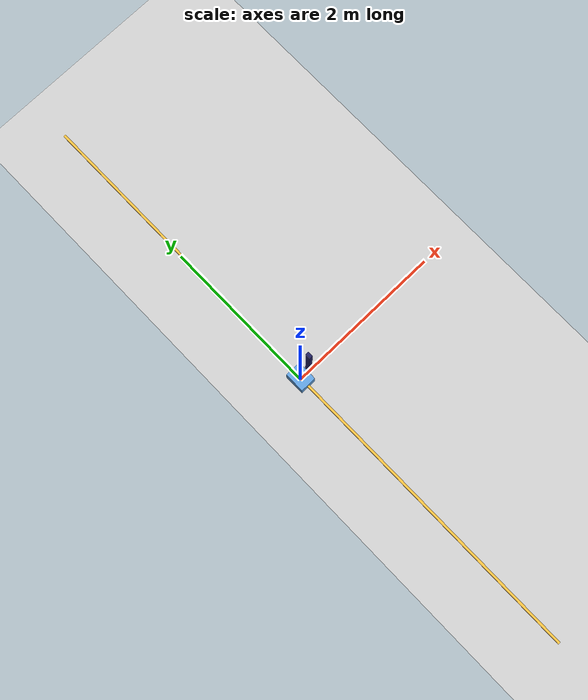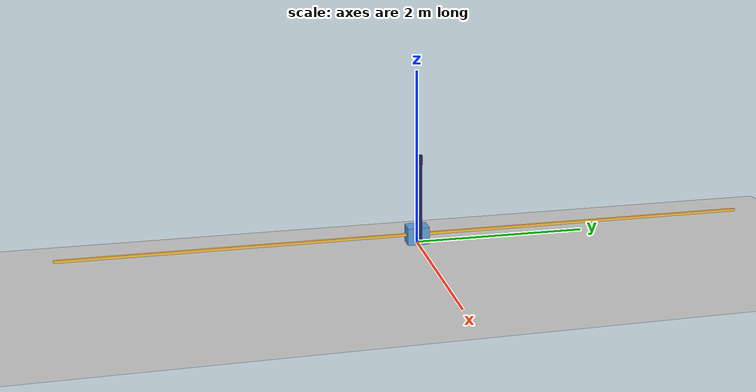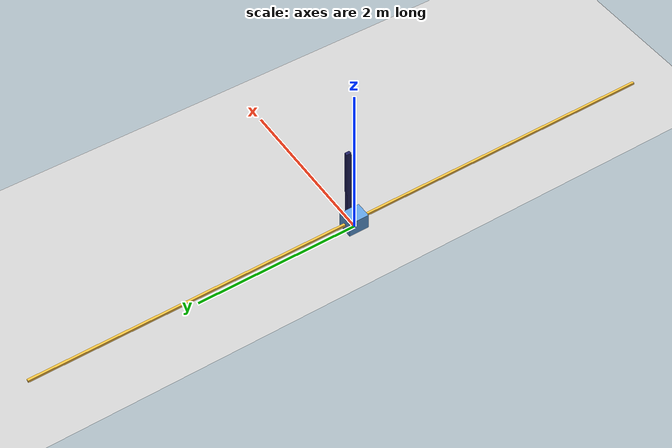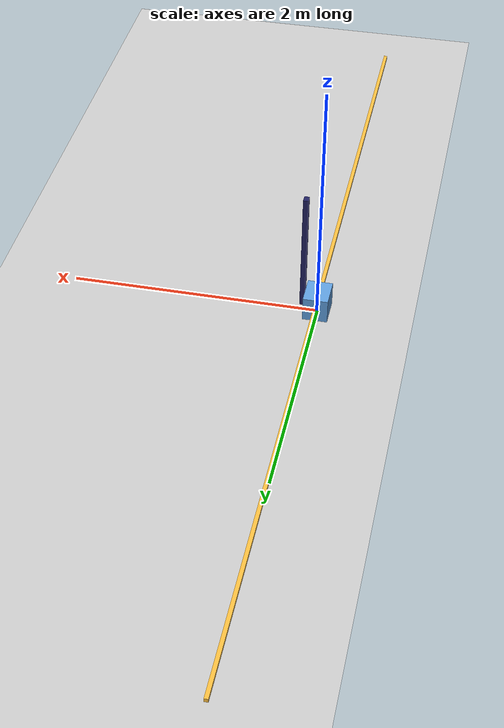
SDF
<?xml version="1.0" ?>
<sdf version="1.8">
  <world name="cartpole">
    <physics name="10ms" type="ignored">
      <max_step_size>0.01</max_step_size>
      <real_time_update_rate>0</real_time_update_rate>
    </physics>
    <plugin
      filename="gz-sim-physics-system"
      name="gz::sim::systems::Physics">
    </plugin>
    <plugin
      filename="gz-sim-contact-system"
      name="gz::sim::systems::Contact">
    </plugin>
    <plugin
      filename="gz-sim-sensors-system"
      name="gz::sim::systems::Sensors">
      <render_engine>ogre2</render_engine>
    </plugin>
    <plugin
      filename="gz-sim-scene-broadcaster-system"
      name="gz::sim::systems::SceneBroadcaster">
    </plugin>
    <plugin
      filename="gz-sim-user-commands-system"
      name="gz::sim::systems::UserCommands">
    </plugin>
    <plugin
      filename="gz-sim-python-system-loader-system"
      name="gz::sim::systems::PythonSystemLoader">
        <module_name>cartpole_learner</module_name>
        <agent_name>cartpole</agent_name>
        <max_steps_per_episode>500</max_steps_per_episode>
        <max_training_episodes>1000</max_training_episodes>
    </plugin>

    <light name="sun" type="directional">
      <cast_shadows>true</cast_shadows>
      <pose>0 0 10 0 0 0</pose>
      <diffuse>0.8 0.8 0.8 1</diffuse>
      <specular>0.2 0.2 0.2 1</specular>
      <attenuation>
        <range>1000</range>
        <constant>0.9</constant>
        <linear>0.01</linear>
        <quadratic>0.001</quadratic>
      </attenuation>
      <direction>-0.5 0.1 -0.9</direction>
    </light>

    <model name="ground_plane">
      <static>true</static>
      <link name="link">
        <collision name="collision">
          <geometry>
            <plane>
              <normal>0 0 1</normal>
              <size>100 100</size>
            </plane>
          </geometry>
        </collision>
        <visual name="visual">
          <geometry>
            <plane>
              <normal>0 0 1</normal>
              <size>100 100</size>
            </plane>
          </geometry>
          <material>
            <ambient>0.8 0.8 0.8 1</ambient>
            <diffuse>0.8 0.8 0.8 1</diffuse>
            <specular>0.8 0.8 0.8 1</specular>
          </material>
        </visual>
      </link>
    </model>

    <model name="cartpole">
      <self_collide>true</self_collide>
      <pose>0 0 0.10 0 0 0</pose>
      <include merge="true">
        <uri>package://gazebo_gymnasium_resources/models/cartpole</uri>
      </include>
      <!-- Anchor the slider rail to the world frame. Defined here in
           the world SDF rather than inside cartpole.sdf — see the
           comment in models/cartpole/cartpole.sdf for the reason. -->
      <joint name="world_to_slider" type="fixed">
        <parent>world</parent>
        <child>slider</child>
      </joint>
    </model>
  </world>
</sdf>

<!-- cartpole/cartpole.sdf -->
<sdf version='1.11'>
  <model name='cartpole'>
    <link name='slider'>
      <inertial>
        <pose>0 0 0 0 0 0</pose>
        <mass>1</mass>
        <inertia>
          <ixx>0.0085400000000000007</ixx>
          <ixy>0</ixy>
          <ixz>0</ixz>
          <iyy>0.0066699999999999997</iyy>
          <iyz>0</iyz>
          <izz>0.0085400000000000007</izz>
        </inertia>
      </inertial>
      <collision name='slider_collision'>
        <pose>0 0 0 0 0 0</pose>
        <geometry>
          <box>
            <size>0.029999999999999999 8 0.029999999999999999</size>
          </box>
        </geometry>
      </collision>
      <visual name='slider_visual'>
        <pose>0 0 0 0 0 0</pose>
        <geometry>
          <box>
            <size>0.029999999999999999 8 0.029999999999999999</size>
          </box>
        </geometry>
        <material>
          <diffuse>1 0.75000006 0.25 1</diffuse>
          <ambient>1 0.75000006 0.25 1</ambient>
        </material>
      </visual>
    </link>
    <joint name='slider_to_cart' type='prismatic'>
      <pose relative_to='slider'> 0 0 0 0 0 0</pose>
      <parent>slider</parent>
      <child>cart</child>
      <axis>
        <xyz>0 1 0</xyz>
        <limit>
          <lower>-4</lower>
          <upper>4</upper>
          <effort>1000</effort>
          <velocity>100</velocity>
        </limit>
        <dynamics>
          <spring_reference>0</spring_reference>
          <spring_stiffness>0</spring_stiffness>
        </dynamics>
      </axis>
    </joint>
    <link name='cart'>
      <pose relative_to='slider_to_cart'>0 0 0 0 0 0</pose>
      <inertial>
        <pose>0 0 0 0 0 0</pose>
        <mass>1</mass>
        <inertia>
          <ixx>0.0085400000000000007</ixx>
          <ixy>0</ixy>
          <ixz>0</ixz>
          <iyy>0.0066699999999999997</iyy>
          <iyz>0</iyz>
          <izz>0.0085400000000000007</izz>
        </inertia>
      </inertial>
      <collision name='cart_collision'>
        <pose>0 0 0 0 0 0</pose>
        <geometry>
          <box>
            <size>0.20000000000000001 0.25 0.20000000000000001</size>
          </box>
        </geometry>
      </collision>
      <visual name='cart_visual'>
        <pose>0 0 0 0 0 0</pose>
        <geometry>
          <box>
            <size>0.20000000000000001 0.25 0.20000000000000001</size>
          </box>
        </geometry>
        <material>
          <diffuse>0.37500003 0.625 0.875 1</diffuse>
          <ambient>0.37500003 0.625 0.875 1</ambient>
        </material>
      </visual>
    </link>
    <joint name='cart_to_pole' type='revolute'>
      <pose relative_to='cart'>0.12 0 0 0 0 0</pose>
      <parent>cart</parent>
      <child>pole</child>
      <axis>
        <xyz>1 0 0</xyz>
        <limit>
          <effort>1000</effort>
          <velocity>8</velocity>
          <lower>-inf</lower>
          <upper>inf</upper>
        </limit>
        <dynamics>
          <spring_reference>0</spring_reference>
          <spring_stiffness>0</spring_stiffness>
        </dynamics>
      </axis>
    </joint>
    <link name='pole'>
      <pose relative_to='cart_to_pole'>0 0 0 0 0 0</pose>
      <inertial>
        <pose>0 0 0.46999999999999997 0 0 0</pose>
        <mass>1</mass>
        <inertia>
          <ixx>0.083629999999999996</ixx>
          <ixy>0</ixy>
          <ixz>0</ixz>
          <iyy>0.083470000000000003</iyy>
          <iyz>0</iyz>
          <izz>0.00043300000000000001</izz>
        </inertia>
      </inertial>
      <collision name='pole_collision'>
        <pose>0 0 0.46999999999999997 0 0 0</pose>
        <geometry>
          <box>
            <size>0.040000000000000001 0.059999999999999998 1</size>
          </box>
        </geometry>
      </collision>
      <visual name='pole_visual'>
        <pose>0 0 0.46999999999999997 0 0 0</pose>
        <geometry>
          <box>
            <size>0.040000000000000001 0.059999999999999998 1</size>
          </box>
        </geometry>
        <material>
          <diffuse>0.125 0.125 0.37500003 1</diffuse>
          <ambient>0.125 0.125 0.37500003 1</ambient>
        </material>
      </visual>
    </link>
    <!-- Plugins -->
    <plugin
       filename="gz-sim-joint-controller-system"
       name="gz::sim::systems::JointController">
       <joint_name>slider_to_cart</joint_name>
       <p_gain>3.0</p_gain>
    </plugin>
    <plugin
       filename="gz-sim-joint-state-publisher-system"
       name="gz::sim::systems::JointStatePublisher">
       <joint_name>slider_to_cart</joint_name>
       <joint_name>cart_to_pole</joint_name>
    </plugin>
  </model>
</sdf>
